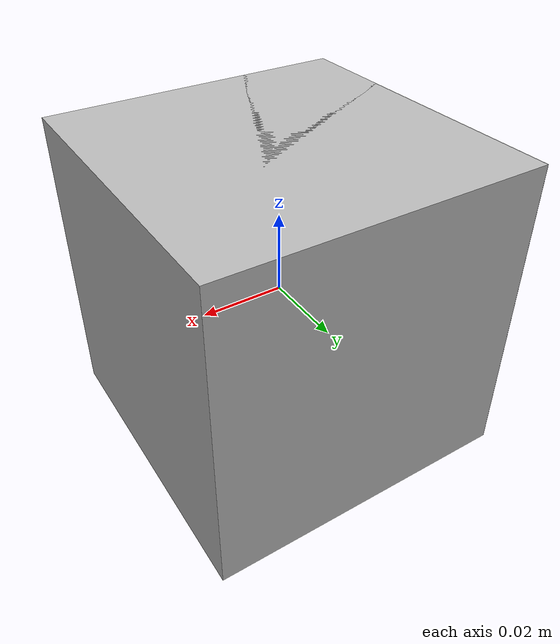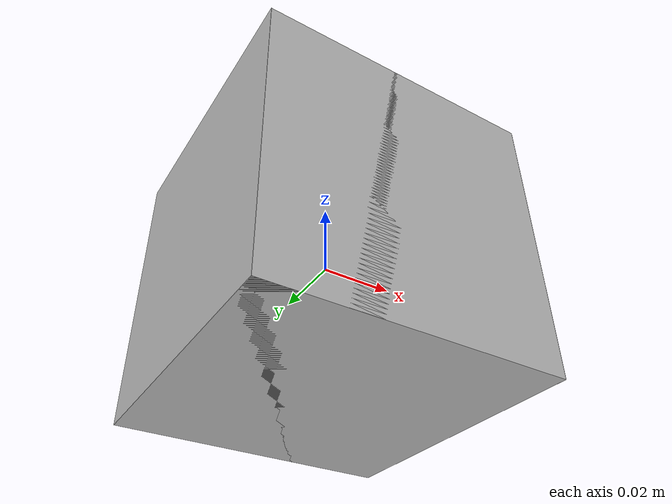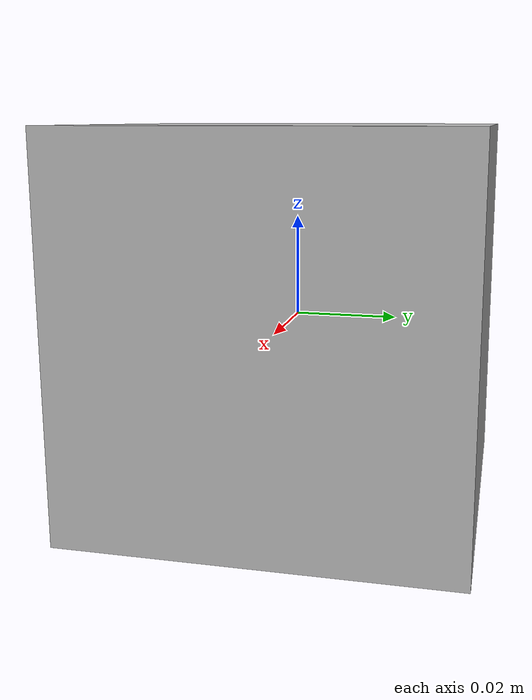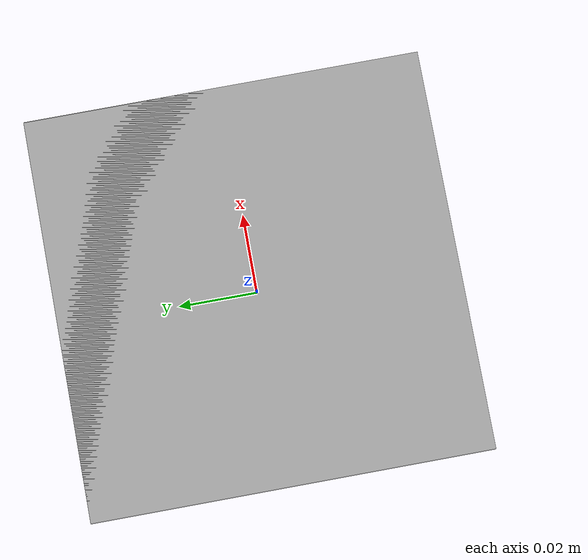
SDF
<?xml version="1.0"?>
<sdf version="1.6">
  <model name="aruco_">
    <link name="link">
      <inertial>
        <pose>0 0 0 0 0 0</pose>
        <mass>0.050</mass>
        <inertia>
          <ixx>3.7499999999999997e-06</ixx>
          <ixy>0.0</ixy>
          <ixz>0.0</ixz>
          <iyy>1.8750008333333333e-06</iyy>
          <iyz>0.0</iyz>
          <izz>1.8750008333333333e-06</izz>
        </inertia>
      </inertial>
      <visual name="front_visual">
        <pose>0.00005 0 0 0 0 0</pose>
        <geometry>
          <box>
            <size>0.0762 0.0762 0.0762</size>
          </box>
        </geometry>
        <material>
          <script>
            <uri>model://aruco_box_1/materials/scripts</uri>
            <uri>model://aruco_box_1/materials/textures</uri>
            <name>Marker</name>
          </script>
        </material>
      </visual>
      <!-- Hide the marker from the back -->
      <visual name="rear_visual">
        <pose>-0.00005 0 0 0 0 0</pose>
        <geometry>
          <box>
            <size>0.0762 0.0762 0.0762</size>
          </box>
        </geometry>
      </visual>
      <collision name="collision">
        <pose>0 0 0 0 0 0</pose>
        <geometry>
          <box>
            <size>0.0762 0.0762 0.0762</size>
          </box>
        </geometry>
      </collision>
    </link>
  </model>
</sdf>
